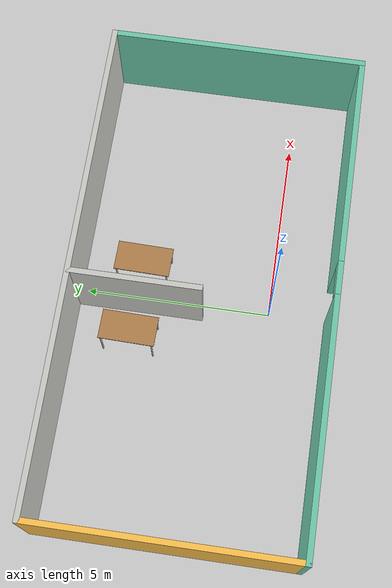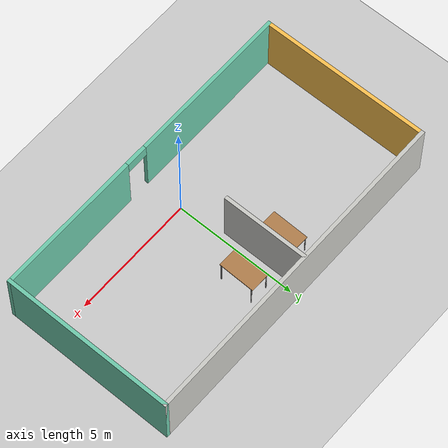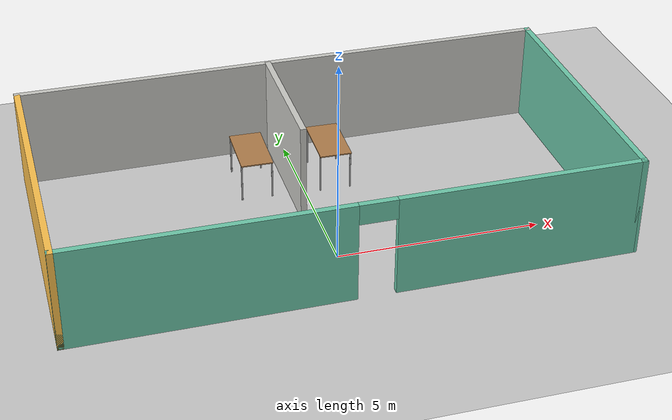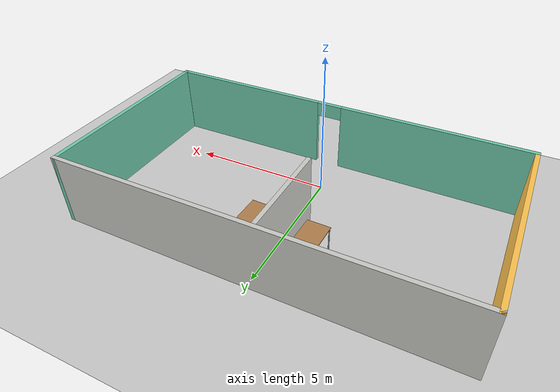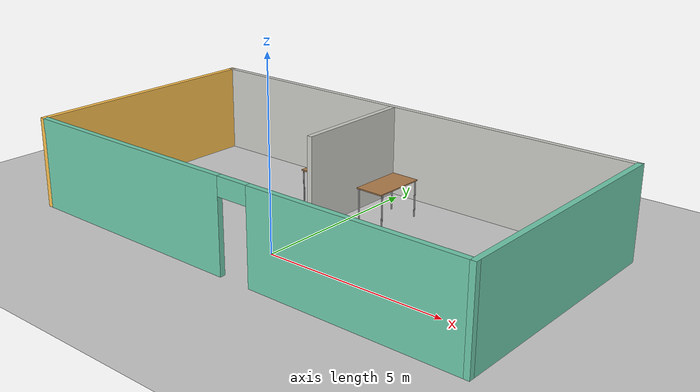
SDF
<sdf version="1.6">
 <world name="default">
  <model name="ground_plane">
   <static>1</static>
   <link name="link">
    <collision name="collision">
     <geometry><plane><normal>0 0 1</normal><size>100 100</size></plane></geometry>
     <surface>
      <contact><collide_bitmask>65535</collide_bitmask></contact>
      <friction><ode><mu>100</mu><mu2>50</mu2></ode></friction>
     </surface>
    </collision>
    <visual name="visual">
     <cast_shadows>0</cast_shadows>
     <geometry><plane><normal>0 0 1</normal><size>100 100</size></plane></geometry>
     <material>
      <script><uri>file://media/materials/scripts/gazebo.material</uri><name>Gazebo/Grey</name></script>
     </material>
    </visual>
   </link>
  </model>
  <model name="prj1_building_door">
   <pose>0.130997 1.98296 0 0 -0 0</pose>
   <link name="Wall_0">
    <collision name="Wall_0_Collision">
     <geometry><box><size>7 0.15 2.5</size></box></geometry>
     <pose>0 0 1.25 0 -0 0</pose>
    </collision>
    <visual name="Wall_0_Visual">
     <pose>0 0 1.25 0 -0 0</pose>
     <geometry><box><size>7 0.15 2.5</size></box></geometry>
     <material>
      <script><uri>file://media/materials/scripts/gazebo.material</uri><name>Gazebo/Grey</name></script>
      <ambient>1 0.764706 0.305882 1</ambient>
     </material>
     <meta><layer>0</layer></meta>
    </visual>
    <pose>-6.7525 -0.1625 0 0 -0 1.5708</pose>
   </link>
   <link name="Wall_1">
    <collision name="Wall_1_Collision">
     <geometry><box><size>13.5 0.15 2.5</size></box></geometry>
     <pose>0 0 1.25 0 -0 0</pose>
    </collision>
    <visual name="Wall_1_Visual">
     <pose>0 0 1.25 0 -0 0</pose>
     <geometry><box><size>13.5 0.15 2.5</size></box></geometry>
     <material>
      <script><uri>file://media/materials/scripts/gazebo.material</uri><name>Gazebo/CeilingTiled</name></script>
      <ambient>1 0.764706 0.305882 1</ambient>
     </material>
     <meta><layer>0</layer></meta>
    </visual>
    <pose>-0.0775 3.2625 0 0 -0 0</pose>
   </link>
   <link name="Wall_2">
    <collision name="Wall_2_Collision">
     <geometry><box><size>7 0.15 2.5</size></box></geometry>
     <pose>0 0 1.25 0 -0 0</pose>
    </collision>
    <visual name="Wall_2_Visual">
     <pose>0 0 1.25 0 -0 0</pose>
     <geometry><box><size>7 0.15 2.5</size></box></geometry>
     <material>
      <script><uri>file://media/materials/scripts/gazebo.material</uri><name>Gazebo/Grey</name></script>
      <ambient>0.435294 0.796078 0.67451 1</ambient>
     </material>
     <meta><layer>0</layer></meta>
    </visual>
    <pose>6.5975 -0.1625 0 0 -0 -1.5708</pose>
   </link>
   <link name="Wall_6">
    <pose>-0.0775 -3.5875 0 0 -0 0</pose>
    <visual name="Wall_6_Visual_0">
     <pose>-3.4075 0 1.25 0 -0 0</pose>
     <geometry><box><size>6.685 0.15 2.5</size></box></geometry>
     <material>
      <script><uri>file://media/materials/scripts/gazebo.material</uri><name>Gazebo/Grey</name></script>
      <ambient>0.435294 0.796078 0.67451 1</ambient>
     </material>
     <meta><layer>0</layer></meta>
    </visual>
    <collision name="Wall_6_Collision_0">
     <geometry><box><size>6.685 0.15 2.5</size></box></geometry>
     <pose>-3.4075 0 1.25 0 -0 0</pose>
    </collision>
    <visual name="Wall_6_Visual_1">
     <pose>3.7925 0 1.25 0 -0 0</pose>
     <geometry><box><size>5.915 0.15 2.5</size></box></geometry>
     <material>
      <script><uri>file://media/materials/scripts/gazebo.material</uri><name>Gazebo/Grey</name></script>
      <ambient>0.435294 0.796078 0.67451 1</ambient>
     </material>
     <meta><layer>0</layer></meta>
    </visual>
    <collision name="Wall_6_Collision_1">
     <geometry><box><size>5.915 0.15 2.5</size></box></geometry>
     <pose>3.7925 0 1.25 0 -0 0</pose>
    </collision>
    <visual name="Wall_6_Visual_2">
     <pose>0.385 0 2.25 0 -0 0</pose>
     <geometry><box><size>0.9 0.15 0.5</size></box></geometry>
     <material>
      <script><uri>file://media/materials/scripts/gazebo.material</uri><name>Gazebo/Grey</name></script>
      <ambient>0.435294 0.796078 0.67451 1</ambient>
     </material>
     <meta><layer>0</layer></meta>
    </visual>
    <collision name="Wall_6_Collision_2">
     <geometry><box><size>0.9 0.15 0.5</size></box></geometry>
     <pose>0.385 0 2.25 0 -0 0</pose>
    </collision>
   </link>
   <link name="Wall_8">
    <collision name="Wall_8_Collision">
     <geometry><box><size>3.5 0.15 2.5</size></box></geometry>
     <pose>0 0 1.25 0 -0 0</pose>
    </collision>
    <visual name="Wall_8_Visual">
     <pose>0 0 1.25 0 -0 0</pose>
     <geometry><box><size>3.5 0.15 2.5</size></box></geometry>
     <material>
      <script><uri>file://media/materials/scripts/gazebo.material</uri><name>Gazebo/CeilingTiled</name></script>
      <ambient>1 0.764706 0.305882 1</ambient>
     </material>
     <meta><layer>0</layer></meta>
    </visual>
    <pose>-0.4625 1.5375 0 0 -0 -1.5708</pose>
   </link>
   <static>1</static>
  </model>
  <model name="table">
   <static>1</static>
   <link name="link">
    <collision name="surface">
     <pose>0 0 1 0 -0 0</pose>
     <geometry><box><size>1.5 0.8 0.03</size></box></geometry>
     <surface><friction><ode><mu>0.6</mu><mu2>0.6</mu2></ode></friction></surface>
    </collision>
    <visual name="visual1">
     <pose>0 0 1 0 -0 0</pose>
     <geometry><box><size>1.5 0.8 0.03</size></box></geometry>
     <material>
      <script><uri>file://media/materials/scripts/gazebo.material</uri><name>Gazebo/Wood</name></script>
     </material>
    </visual>
    <collision name="front_left_leg">
     <pose>0.68 0.38 0.5 0 -0 0</pose>
     <geometry><cylinder><radius>0.02</radius><length>1</length></cylinder></geometry>
    </collision>
    <visual name="front_left_leg">
     <pose>0.68 0.38 0.5 0 -0 0</pose>
     <geometry><cylinder><radius>0.02</radius><length>1</length></cylinder></geometry>
     <material>
      <script><uri>file://media/materials/scripts/gazebo.material</uri><name>Gazebo/Grey</name></script>
     </material>
    </visual>
    <collision name="front_right_leg">
     <pose>0.68 -0.38 0.5 0 -0 0</pose>
     <geometry><cylinder><radius>0.02</radius><length>1</length></cylinder></geometry>
    </collision>
    <visual name="front_right_leg">
     <pose>0.68 -0.38 0.5 0 -0 0</pose>
     <geometry><cylinder><radius>0.02</radius><length>1</length></cylinder></geometry>
     <material>
      <script><uri>file://media/materials/scripts/gazebo.material</uri><name>Gazebo/Grey</name></script>
     </material>
    </visual>
    <collision name="back_right_leg">
     <pose>-0.68 -0.38 0.5 0 -0 0</pose>
     <geometry><cylinder><radius>0.02</radius><length>1</length></cylinder></geometry>
    </collision>
    <visual name="back_right_leg">
     <pose>-0.68 -0.38 0.5 0 -0 0</pose>
     <geometry><cylinder><radius>0.02</radius><length>1</length></cylinder></geometry>
     <material>
      <script><uri>file://media/materials/scripts/gazebo.material</uri><name>Gazebo/Grey</name></script>
     </material>
    </visual>
    <collision name="back_left_leg">
     <pose>-0.68 0.38 0.5 0 -0 0</pose>
     <geometry><cylinder><radius>0.02</radius><length>1</length></cylinder></geometry>
    </collision>
    <visual name="back_left_leg">
     <pose>-0.68 0.38 0.5 0 -0 0</pose>
     <geometry><cylinder><radius>0.02</radius><length>1</length></cylinder></geometry>
     <material>
      <script><uri>file://media/materials/scripts/gazebo.material</uri><name>Gazebo/Grey</name></script>
     </material>
    </visual>
   </link>
   <pose>0.787614 3.54326 0 0 0 -1.59173</pose>
  </model>
  <model name="table_clone">
   <static>1</static>
   <link name="link">
    <collision name="surface">
     <pose>0 0 1 0 -0 0</pose>
     <geometry><box><size>1.5 0.8 0.03</size></box></geometry>
     <surface><friction><ode><mu>0.6</mu><mu2>0.6</mu2></ode></friction></surface>
    </collision>
    <visual name="visual1">
     <pose>0 0 1 0 -0 0</pose>
     <geometry><box><size>1.5 0.8 0.03</size></box></geometry>
     <material>
      <script><uri>file://media/materials/scripts/gazebo.material</uri><name>Gazebo/Wood</name></script>
     </material>
    </visual>
    <collision name="front_left_leg">
     <pose>0.68 0.38 0.5 0 -0 0</pose>
     <geometry><cylinder><radius>0.02</radius><length>1</length></cylinder></geometry>
    </collision>
    <visual name="front_left_leg">
     <pose>0.68 0.38 0.5 0 -0 0</pose>
     <geometry><cylinder><radius>0.02</radius><length>1</length></cylinder></geometry>
     <material>
      <script><uri>file://media/materials/scripts/gazebo.material</uri><name>Gazebo/Grey</name></script>
     </material>
    </visual>
    <collision name="front_right_leg">
     <pose>0.68 -0.38 0.5 0 -0 0</pose>
     <geometry><cylinder><radius>0.02</radius><length>1</length></cylinder></geometry>
    </collision>
    <visual name="front_right_leg">
     <pose>0.68 -0.38 0.5 0 -0 0</pose>
     <geometry><cylinder><radius>0.02</radius><length>1</length></cylinder></geometry>
     <material>
      <script><uri>file://media/materials/scripts/gazebo.material</uri><name>Gazebo/Grey</name></script>
     </material>
    </visual>
    <collision name="back_right_leg">
     <pose>-0.68 -0.38 0.5 0 -0 0</pose>
     <geometry><cylinder><radius>0.02</radius><length>1</length></cylinder></geometry>
    </collision>
    <visual name="back_right_leg">
     <pose>-0.68 -0.38 0.5 0 -0 0</pose>
     <geometry><cylinder><radius>0.02</radius><length>1</length></cylinder></geometry>
     <material>
      <script><uri>file://media/materials/scripts/gazebo.material</uri><name>Gazebo/Grey</name></script>
     </material>
    </visual>
    <collision name="back_left_leg">
     <pose>-0.68 0.38 0.5 0 -0 0</pose>
     <geometry><cylinder><radius>0.02</radius><length>1</length></cylinder></geometry>
    </collision>
    <visual name="back_left_leg">
     <pose>-0.68 0.38 0.5 0 -0 0</pose>
     <geometry><cylinder><radius>0.02</radius><length>1</length></cylinder></geometry>
     <material>
      <script><uri>file://media/materials/scripts/gazebo.material</uri><name>Gazebo/Grey</name></script>
     </material>
    </visual>
   </link>
   <pose>-1.19005 3.62872 0 0 0 -1.59173</pose>
  </model>
 </world>
</sdf>
